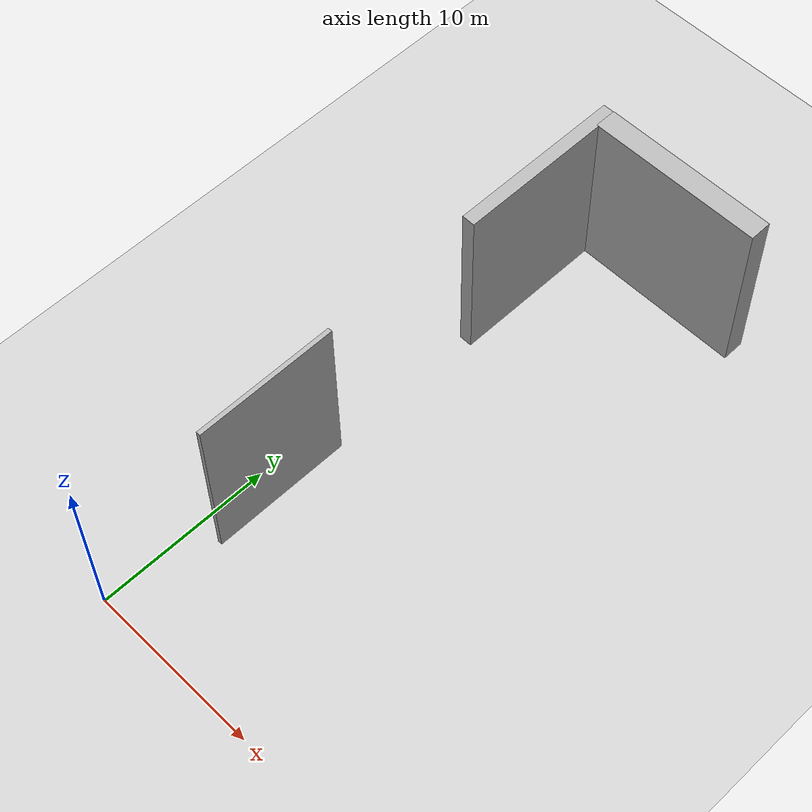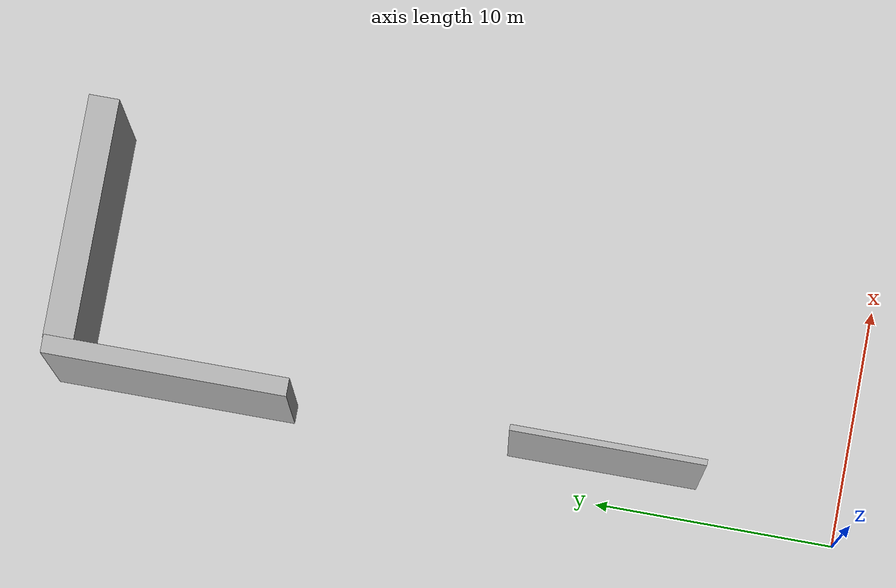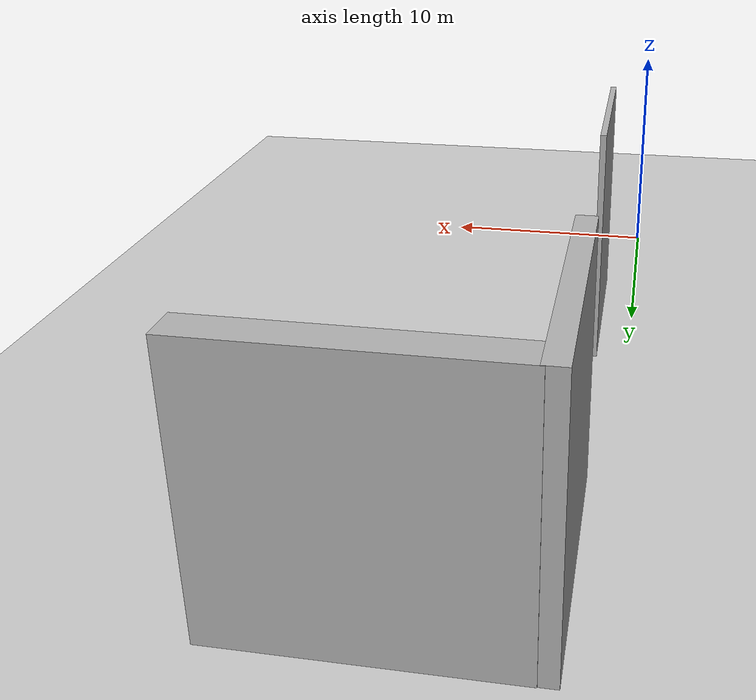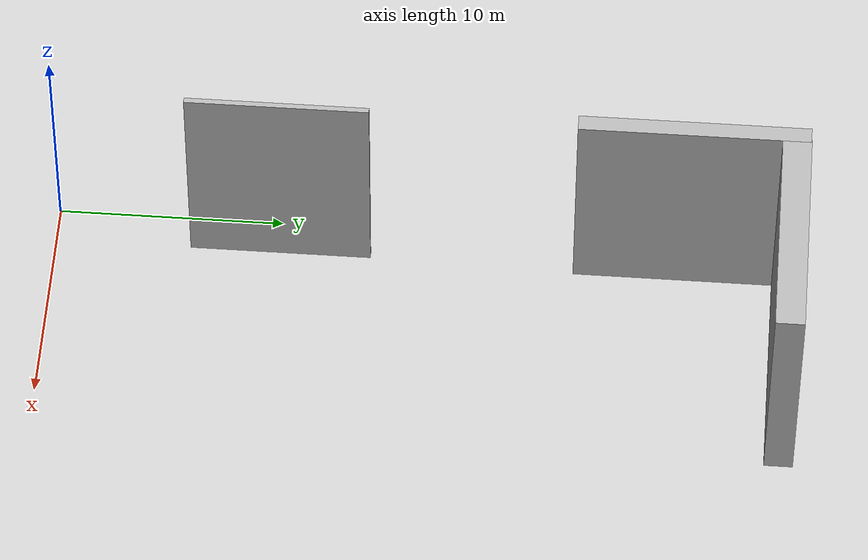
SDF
<?xml version="1.0" encoding="UTF-8"?>
<sdf version="1.9">
  <world name="walls_nlos">
    <physics type="ode">
      <max_step_size>0.004</max_step_size>
      <real_time_factor>1.0</real_time_factor>
      <real_time_update_rate>250</real_time_update_rate>
    </physics>

    <gravity>0 0 -9.8</gravity>
    <magnetic_field>6e-06 2.3e-05 -4.2e-05</magnetic_field>
    <atmosphere type="adiabatic"/>

    <scene>
      <grid>false</grid>
      <ambient>0.4 0.4 0.4 1</ambient>
      <background>0.7 0.7 0.7 1</background>
      <shadows>true</shadows>
    </scene>

    <model name="ground_plane">
      <static>true</static>
      <link name="link">
        <collision name="collision">
          <geometry>
            <plane>
              <normal>0 0 1</normal>
              <size>1 1</size>
            </plane>
          </geometry>
          <surface>
            <friction>
              <ode/>
            </friction>
            <bounce/>
            <contact/>
          </surface>
        </collision>
        <visual name="visual">
          <geometry>
            <plane>
              <normal>0 0 1</normal>
              <size>100 100</size>
            </plane>
          </geometry>
          <material>
            <ambient>0.8 0.8 0.8 1</ambient>
            <diffuse>0.8 0.8 0.8 1</diffuse>
            <specular>0.8 0.8 0.8 1</specular>
          </material>
        </visual>
        <pose>0 0 0 0 0 0</pose>
        <inertial>
          <pose>0 0 0 0 0 0</pose>
          <mass>1</mass>
          <inertia>
            <ixx>1</ixx>
            <ixy>0</ixy>
            <ixz>0</ixz>
            <iyy>1</iyy>
            <iyz>0</iyz>
            <izz>1</izz>
          </inertia>
        </inertial>
        <enable_wind>false</enable_wind>
      </link>
      <pose>0 0 0 0 0 0</pose>
      <self_collide>false</self_collide>
    </model>

    <light name="sunUTC" type="directional">
      <pose>0 0 500 0 0 0</pose>
      <cast_shadows>true</cast_shadows>
      <intensity>1</intensity>
      <direction>0.001 0.625 -0.78</direction>
      <diffuse>0.904 0.904 0.904 1</diffuse>
      <specular>0.271 0.271 0.271 1</specular>
      <attenuation>
        <range>2000</range>
        <linear>0</linear>
        <constant>1</constant>
        <quadratic>0</quadratic>
      </attenuation>
      <spot>
        <inner_angle>0</inner_angle>
        <outer_angle>0</outer_angle>
        <falloff>0</falloff>
      </spot>
    </light>

    <spherical_coordinates>
      <surface_model>EARTH_WGS84</surface_model>
      <world_frame_orientation>ENU</world_frame_orientation>
      <latitude_deg>47.397971057728974</latitude_deg>
      <longitude_deg>8.546163739800146</longitude_deg>
      <elevation>0</elevation>
    </spherical_coordinates>

    <!-- Thin wall: same thickness as walls.sdf (1 m) -->
    <model name="thin_wall">
      <static>true</static>
      <pose>1.5 10 5 0 0 0</pose>
      <link name="link">
        <collision name="collision">
          <geometry>
            <box>
              <size>.25 8 10</size>
            </box>
          </geometry>
        </collision>
        <visual name="visual">
          <geometry>
            <box>
              <size>.25 8 10</size>
            </box>
          </geometry>
          <material>
            <ambient>0.3 0.3 0.3 1</ambient>
            <diffuse>0.7 0.7 0.7 1</diffuse>
            <specular>1 1 1 1</specular>
          </material>
        </visual>
      </link>
    </model>

    <!-- Cornered wall: double thickness (2 m) -->
    <model name="corner_wall_double_thickness">
      <static>true</static>

      <!-- Vertical segment -->
      <link name="vertical_segment">
        <pose>1.5 28 5 0 0 0</pose>
        <collision name="collision">
          <geometry>
            <box>
              <size>.75 10 10</size>
            </box>
          </geometry>
        </collision>
        <visual name="visual">
          <geometry>
            <box>
              <size>.75 10 10</size>
            </box>
          </geometry>
          <material>
            <ambient>0.3 0.3 0.3 1</ambient>
            <diffuse>0.7 0.7 0.7 1</diffuse>
            <specular>1 1 1 1</specular>
          </material>
        </visual>
      </link>

      <!-- Top long segment -->
      <link name="top_segment">
        <pose>6.75 32.4 5 0 0 0</pose>
        <collision name="collision">
          <geometry>
            <box>
              <size>10 1.25 10</size>
            </box>
          </geometry>
        </collision>
        <visual name="visual">
          <geometry>
            <box>
              <size>10 1.25 10</size>
            </box>
          </geometry>
          <material>
            <ambient>0.3 0.3 0.3 1</ambient>
            <diffuse>0.7 0.7 0.7 1</diffuse>
            <specular>1 1 1 1</specular>
          </material>
        </visual>
      </link>

    </model>
  </world>
</sdf>
